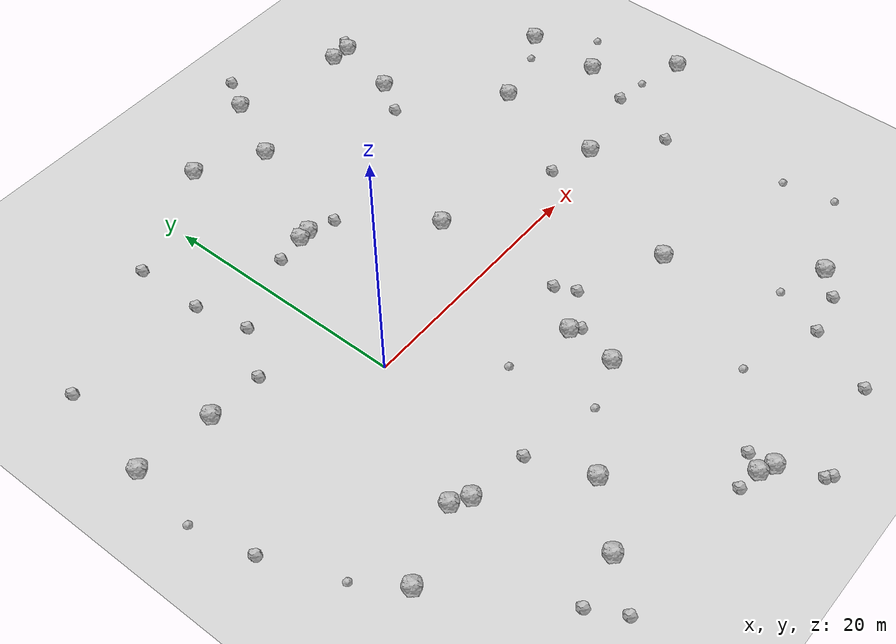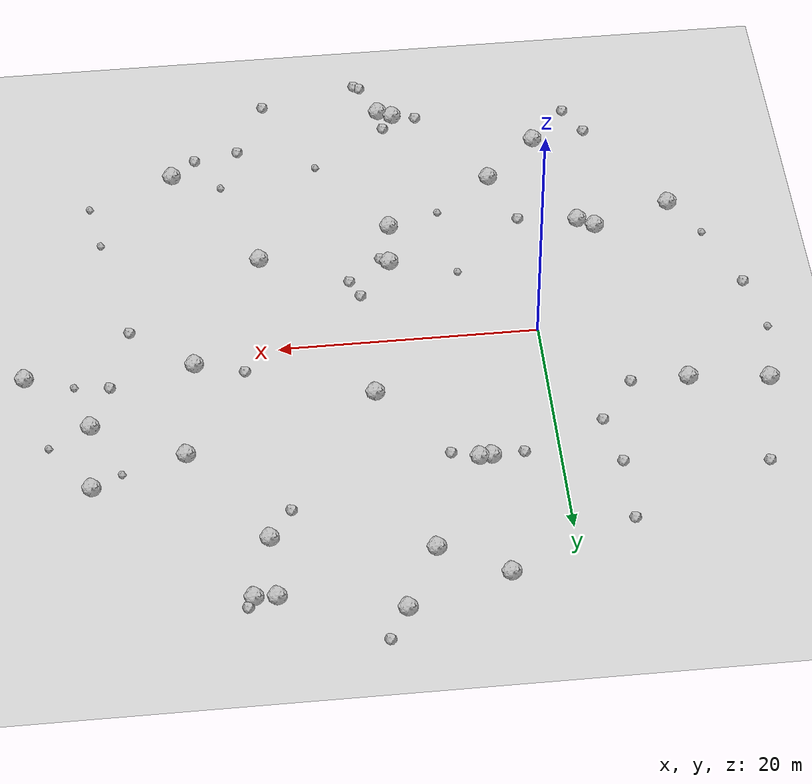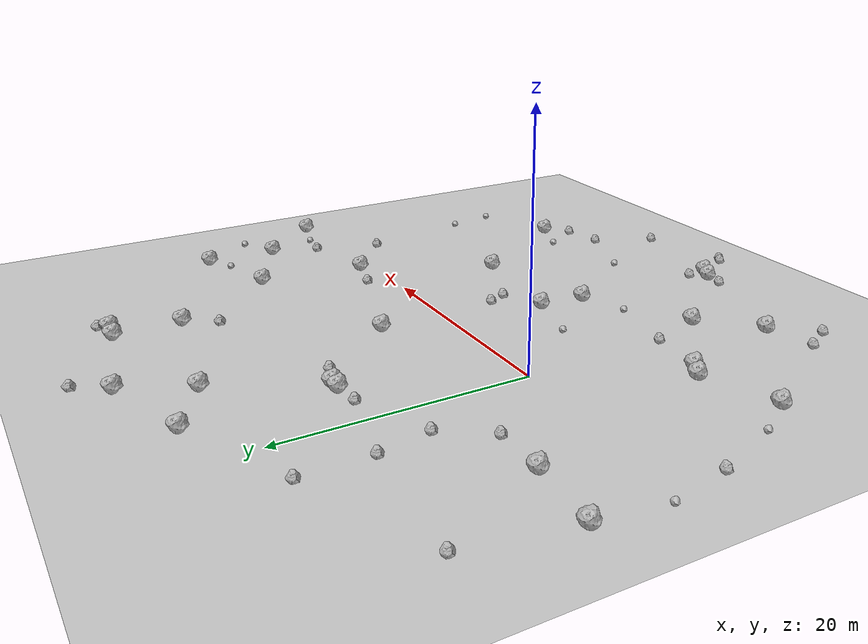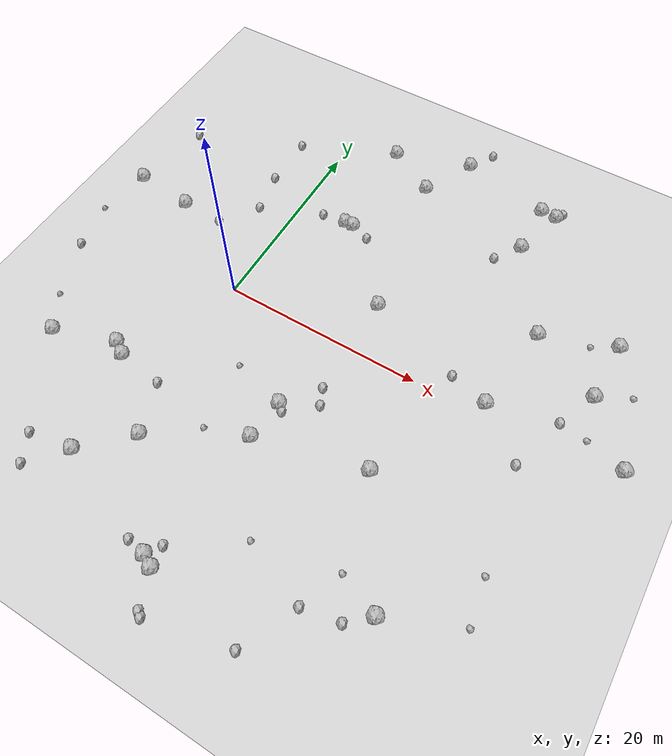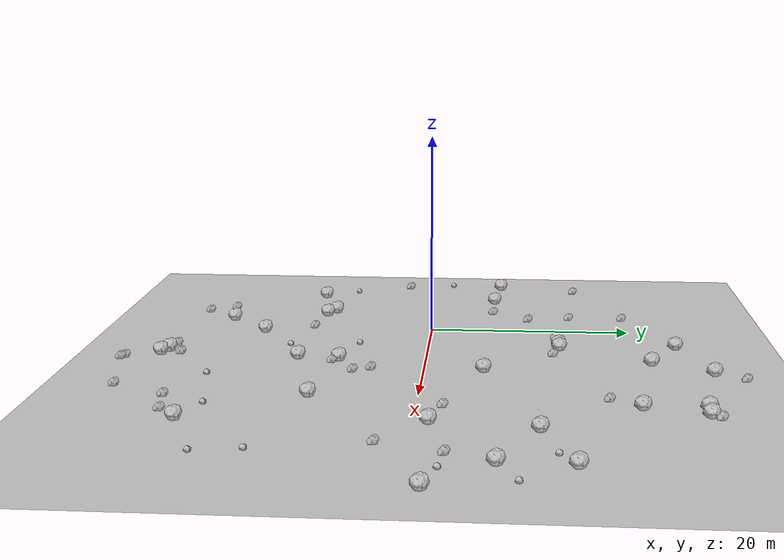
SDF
<sdf version="1.6">
 <world name="default">
  <include><uri>model://custom_ground</uri></include>
  <include><uri>model://sun</uri></include>
  <model name="rock1_0_0">
   <include><uri>model://rock1</uri><pose>-10.632036444209803 6.372274471117208 0.5 0 0 0</pose></include>
  </model>
  <model name="rock1_0_1">
   <include><uri>model://rock1</uri><pose>34.848359423269876 13.021060215361352 0.5 0 0 0</pose></include>
  </model>
  <model name="rock1_0_2">
   <include><uri>model://rock1</uri><pose>10.674249045546237 -8.245713809858938 0.5 0 0 0</pose></include>
  </model>
  <model name="rock1_0_3">
   <include><uri>model://rock1</uri><pose>1.8040972145692713 -17.042814433260915 0.5 0 0 0</pose></include>
  </model>
  <model name="rock1_0_4">
   <include><uri>model://rock1</uri><pose>23.728844310725798 24.587222124630095 0.5 0 0 0</pose></include>
  </model>
  <model name="rock1_0_5">
   <include><uri>model://rock1</uri><pose>34.68871428586734 6.871091022039927 0.5 0 0 0</pose></include>
  </model>
  <model name="rock1_0_6">
   <include><uri>model://rock1</uri><pose>26.5413794175981 1.2683333718020364 0.5 0 0 0</pose></include>
  </model>
  <model name="rock1_0_7">
   <include><uri>model://rock1</uri><pose>5.169797566897969 12.795053523446136 0.5 0 0 0</pose></include>
  </model>
  <model name="rock1_0_8">
   <include><uri>model://rock1</uri><pose>12.885265354284414 26.668680613347455 0.5 0 0 0</pose></include>
  </model>
  <model name="rock1_0_9">
   <include><uri>model://rock1</uri><pose>8.735900556234125 -25.10414165403146 0.5 0 0 0</pose></include>
  </model>
  <model name="rock1_0_10">
   <include><uri>model://rock1</uri><pose>39.4562576997984 1.4791625804452693 0.5 0 0 0</pose></include>
  </model>
  <model name="rock1_0_11">
   <include><uri>model://rock1</uri><pose>22.185727563246658 19.1486602373512 0.5 0 0 0</pose></include>
  </model>
  <model name="rock1_0_12">
   <include><uri>model://rock1</uri><pose>27.045290867944423 -19.7007777233449 0.5 0 0 0</pose></include>
  </model>
  <model name="rock1_0_13">
   <include><uri>model://rock1</uri><pose>22.07163832003699 24.683890625151534 0.5 0 0 0</pose></include>
  </model>
  <model name="rock1_0_14">
   <include><uri>model://rock1</uri><pose>9.85786008442738 -25.69075873853413 0.5 0 0 0</pose></include>
  </model>
  <model name="rock1_0_15">
   <include><uri>model://rock1</uri><pose>5.118034430884148 24.134490743899505 0.5 0 0 0</pose></include>
  </model>
  <model name="rock1_0_16">
   <include><uri>model://rock1</uri><pose>10.218699277787046 21.268260583251276 0.5 0 0 0</pose></include>
  </model>
  <model name="rock1_0_17">
   <include><uri>model://rock1</uri><pose>-16.761454153035757 7.0480857076533425 0.5 0 0 0</pose></include>
  </model>
  <model name="rock1_0_18">
   <include><uri>model://rock1</uri><pose>-4.631186686617886 -11.514671783711748 0.5 0 0 0</pose></include>
  </model>
  <model name="rock1_0_19">
   <include><uri>model://rock1</uri><pose>20.78717395375554 -9.576174155720715 0.5 0 0 0</pose></include>
  </model>
  <model name="rock1_0_20">
   <include><uri>model://rock1</uri><pose>10.302165633587673 -12.228212884091228 0.5 0 0 0</pose></include>
  </model>
  <model name="rock1_0_21">
   <include><uri>model://rock1</uri><pose>6.073390574323941 12.819559466587222 0.5 0 0 0</pose></include>
  </model>
  <model name="rock1_0_22">
   <include><uri>model://rock1</uri><pose>-12.053141531957143 -12.716821719782644 0.5 0 0 0</pose></include>
  </model>
  <model name="rock1_0_23">
   <include><uri>model://rock1</uri><pose>-5.914739539013741 -10.69749484543275 0.5 0 0 0</pose></include>
  </model>
  <model name="rock1_0_24">
   <include><uri>model://rock1</uri><pose>27.71865807675826 10.38101327733127 0.5 0 0 0</pose></include>
  </model>
  <model name="rock1_0_25">
   <include><uri>model://rock1</uri><pose>13.128024177706344 5.538444775444688 0.5 0 0 0</pose></include>
  </model>
  <model name="rock1_0_26">
   <include><uri>model://rock1</uri><pose>-2.327954899999007 -21.1367077368702 0.5 0 0 0</pose></include>
  </model>
  <model name="rock2_0_0">
   <include><uri>model://rock2</uri><pose>11.504558970836499 -29.123467245690907 0.3 0 0 0</pose></include>
  </model>
  <model name="rock2_0_1">
   <include><uri>model://rock2</uri><pose>-4.533338869804002 19.816963597057374 0.3 0 0 0</pose></include>
  </model>
  <model name="rock2_0_2">
   <include><uri>model://rock2</uri><pose>31.284743039634066 -2.7046985539861694 0.3 0 0 0</pose></include>
  </model>
  <model name="rock2_0_3">
   <include><uri>model://rock2</uri><pose>24.196087900217925 25.41611733267343 0.3 0 0 0</pose></include>
  </model>
  <model name="rock2_0_4">
   <include><uri>model://rock2</uri><pose>0.022021895059360475 -12.192665966183423 0.3 0 0 0</pose></include>
  </model>
  <model name="rock2_0_5">
   <include><uri>model://rock2</uri><pose>11.074209512001936 -28.80674256900753 0.3 0 0 0</pose></include>
  </model>
  <model name="rock2_0_6">
   <include><uri>model://rock2</uri><pose>22.750468868882002 2.278085356820924 0.3 0 0 0</pose></include>
  </model>
  <model name="rock2_0_7">
   <include><uri>model://rock2</uri><pose>20.38832353813921 16.540845562895505 0.3 0 0 0</pose></include>
  </model>
  <model name="rock2_0_8">
   <include><uri>model://rock2</uri><pose>13.236945186105643 -4.896960602196575 0.3 0 0 0</pose></include>
  </model>
  <model name="rock2_0_9">
   <include><uri>model://rock2</uri><pose>-4.477347061056792 14.234044377257064 0.3 0 0 0</pose></include>
  </model>
  <model name="rock2_0_10">
   <include><uri>model://rock2</uri><pose>-6.588274007189096 -21.86085208330828 0.3 0 0 0</pose></include>
  </model>
  <model name="rock2_0_11">
   <include><uri>model://rock2</uri><pose>21.602423518157707 -22.148317547433045 0.3 0 0 0</pose></include>
  </model>
  <model name="rock2_0_12">
   <include><uri>model://rock2</uri><pose>6.871614491457198 -24.80044425370334 0.3 0 0 0</pose></include>
  </model>
  <model name="rock2_0_13">
   <include><uri>model://rock2</uri><pose>8.120527577845778 12.12743274342602 0.3 0 0 0</pose></include>
  </model>
  <model name="rock2_0_14">
   <include><uri>model://rock2</uri><pose>19.18805664996622 -27.288469898237945 0.3 0 0 0</pose></include>
  </model>
  <model name="rock2_0_15">
   <include><uri>model://rock2</uri><pose>9.611088027997972 -23.773496691005143 0.3 0 0 0</pose></include>
  </model>
  <model name="rock2_0_16">
   <include><uri>model://rock2</uri><pose>-15.324857723507261 15.260055963965442 0.3 0 0 0</pose></include>
  </model>
  <model name="rock2_0_17">
   <include><uri>model://rock2</uri><pose>-5.222205621887067 -24.43594372950328 0.3 0 0 0</pose></include>
  </model>
  <model name="rock2_0_18">
   <include><uri>model://rock2</uri><pose>14.410054510468854 29.31704588271308 0.3 0 0 0</pose></include>
  </model>
  <model name="rock2_0_19">
   <include><uri>model://rock2</uri><pose>2.6782864375663777 12.55746437517437 0.3 0 0 0</pose></include>
  </model>
  <model name="rock2_0_20">
   <include><uri>model://rock2</uri><pose>11.312836079729525 -8.797165126554987 0.3 0 0 0</pose></include>
  </model>
  <model name="rock2_0_21">
   <include><uri>model://rock2</uri><pose>-6.239471528179719 6.250573180466134 0.3 0 0 0</pose></include>
  </model>
  <model name="rock2_0_22">
   <include><uri>model://rock2</uri><pose>33.03582471205679 2.911880539802695 0.3 0 0 0</pose></include>
  </model>
  <model name="rock2_0_23">
   <include><uri>model://rock2</uri><pose>25.09102233181052 -21.4675087540346 0.3 0 0 0</pose></include>
  </model>
  <model name="rock2_0_24">
   <include><uri>model://rock2</uri><pose>-16.55301061295157 -3.444558423251028 0.3 0 0 0</pose></include>
  </model>
  <model name="rock2_0_25">
   <include><uri>model://rock2</uri><pose>-3.583807096094347 9.936460011452112 0.3 0 0 0</pose></include>
  </model>
  <model name="rock2_0_26">
   <include><uri>model://rock2</uri><pose>13.95426534652428 -6.530364126503542 0.3 0 0 0</pose></include>
  </model>
  <model name="rock3_0_0">
   <include><uri>model://rock3</uri><pose>37.808432061269585 8.560958880593006 0.2 0 0 0</pose></include>
  </model>
  <model name="rock3_0_1">
   <include><uri>model://rock3</uri><pose>35.69308837825859 2.5206061133350346 0.2 0 0 0</pose></include>
  </model>
  <model name="rock3_0_2">
   <include><uri>model://rock3</uri><pose>33.02474819569644 -12.600251044103338 0.2 0 0 0</pose></include>
  </model>
  <model name="rock3_0_3">
   <include><uri>model://rock3</uri><pose>23.18700820179003 -18.238094026100676 0.2 0 0 0</pose></include>
  </model>
  <model name="rock3_0_4">
   <include><uri>model://rock3</uri><pose>32.50286877384203 11.677095915078326 0.2 0 0 0</pose></include>
  </model>
  <model name="rock3_0_5">
   <include><uri>model://rock3</uri><pose>6.234102244483736 -13.652848041581947 0.2 0 0 0</pose></include>
  </model>
  <model name="rock3_0_6">
   <include><uri>model://rock3</uri><pose>15.449694153700094 -19.824548955817765 0.2 0 0 0</pose></include>
  </model>
  <model name="rock3_0_7">
   <include><uri>model://rock3</uri><pose>5.392121712031255 -6.8548494969930935 0.2 0 0 0</pose></include>
  </model>
  <model name="rock3_0_8">
   <include><uri>model://rock3</uri><pose>-17.658820441716724 1.4964460823876031 0.2 0 0 0</pose></include>
  </model>
  <model name="rock3_0_9">
   <include><uri>model://rock3</uri><pose>33.70655492375871 -16.78403294387467 0.2 0 0 0</pose></include>
  </model>
  <model name="rock3_0_10">
   <include><uri>model://rock3</uri><pose>-14.316322174385816 -9.285941993466395 0.2 0 0 0</pose></include>
  </model>
 </world>
</sdf>
